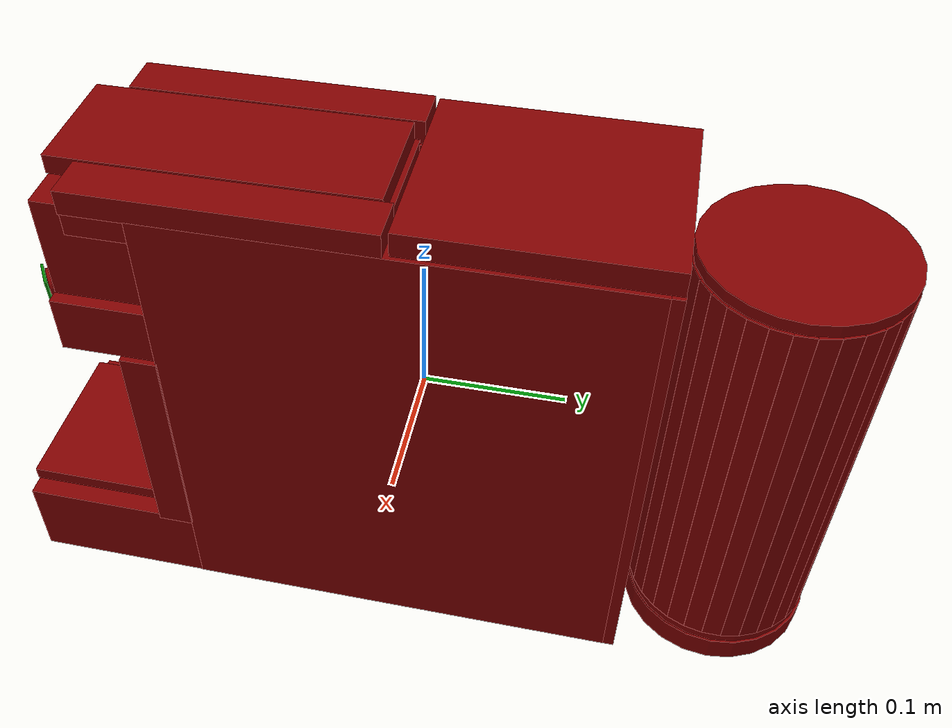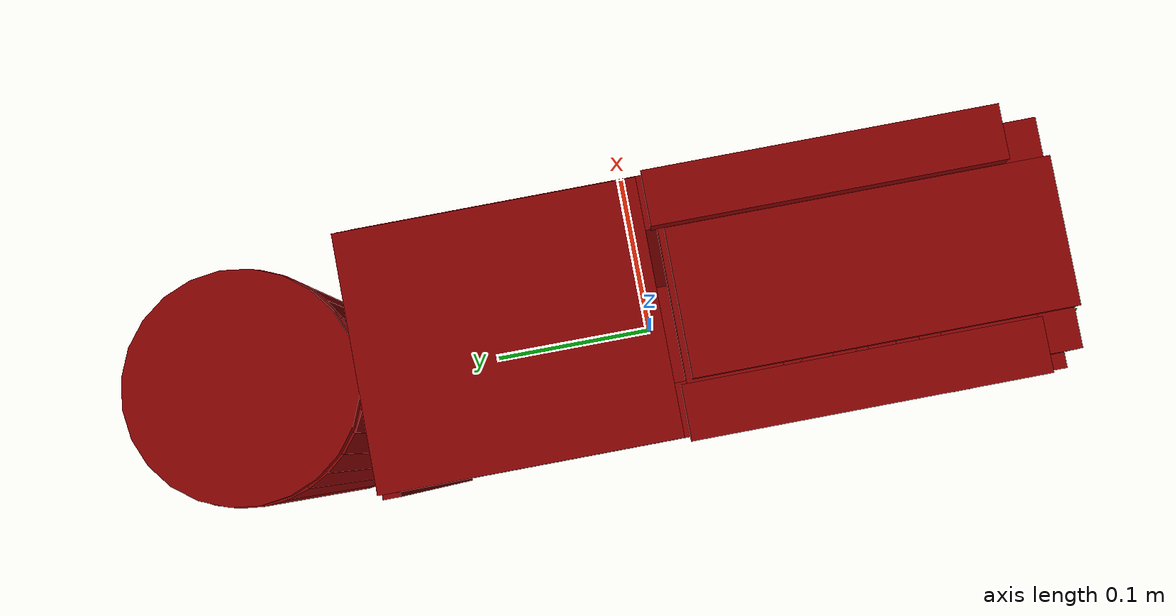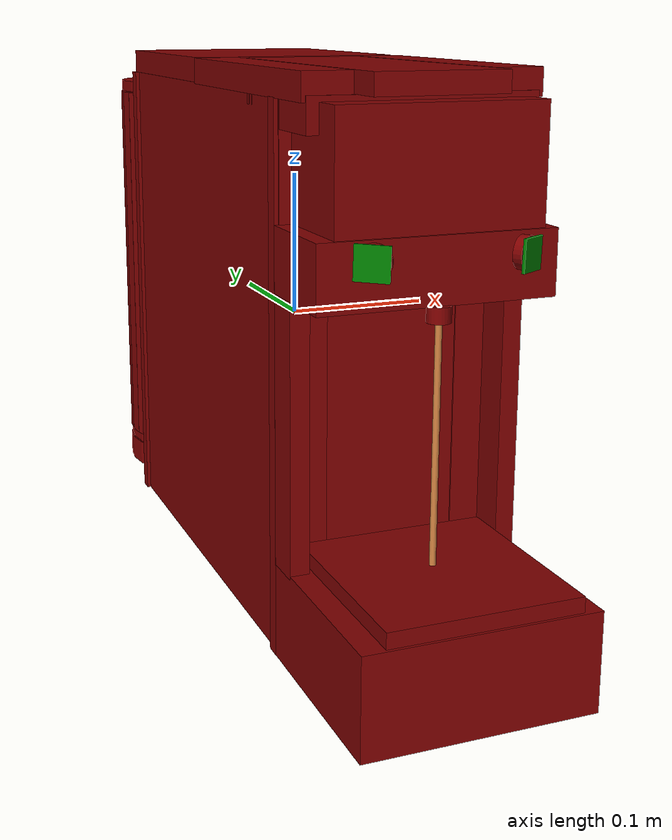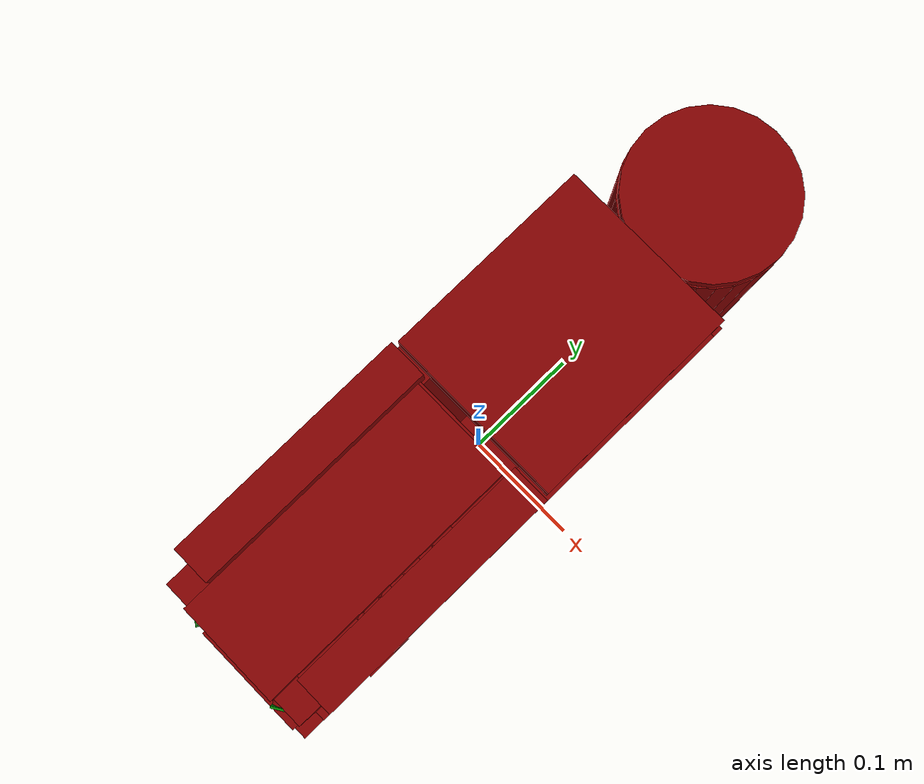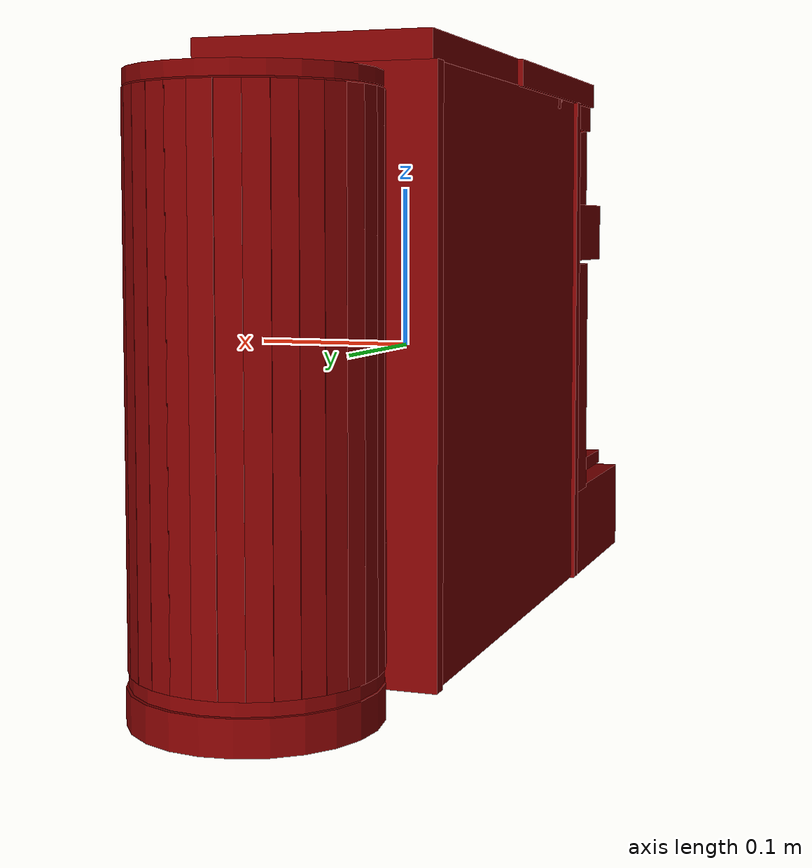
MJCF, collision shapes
<?xml version='1.0' encoding='UTF-8'?>
<mujoco model="model">
  <option timestep="0.002" gravity="0.0 0.0 -9.81"/>
  <compiler angle="radian"/>
  <asset>
    <mesh file="visuals/Body001.obj" name="Body001_vis"/>
    <mesh file="visuals/Button001.obj" name="Button001_vis"/>
    <mesh file="visuals/Button002.obj" name="Button002_vis"/>
    <mesh file="visuals/Container001_Clear.obj" name="Container001_Clear_vis"/>
    <mesh file="visuals/Lid001.obj" name="Lid001_vis"/>
    <mesh file="visuals/Lid002.obj" name="Lid002_vis"/>
    <mesh file="visuals/Lid003.obj" name="Lid003_vis"/>
    <texture file="visuals/T_BC001.png" name="Body001_material" type="2d"/>
    <material name="Body001_material" rgba="1 1 1 1.0" texture="Body001_material" shininess="0.1" specular="5"/>
    <texture file="visuals/T_BC001.png" name="Button001_material" type="2d"/>
    <material name="Button001_material" rgba="1 1 1 1.0" texture="Button001_material" shininess="0.1" specular="5"/>
    <texture file="visuals/T_BC001.png" name="Button002_material" type="2d"/>
    <material name="Button002_material" rgba="1 1 1 1.0" texture="Button002_material" shininess="0.1" specular="5"/>
    <texture file="visuals/T_BC001.png" name="Container001_Clear_material" type="2d"/>
    <material name="Container001_Clear_material" rgba="1 1 1 0.044025152921676636" texture="Container001_Clear_material" shininess="0.5" specular="0.3103448502657381"/>
    <texture file="visuals/T_BC001.png" name="Lid002_material" type="2d"/>
    <material name="Lid002_material" rgba="1 1 1 1.0" texture="Lid002_material" shininess="0.1" specular="5"/>
    <texture file="visuals/T_BC001.png" name="Lid001_material" type="2d"/>
    <material name="Lid001_material" rgba="1 1 1 1.0" texture="Lid001_material" shininess="0.1" specular="5"/>
    <texture file="visuals/T_BC001.png" name="Lid003_material" type="2d"/>
    <material name="Lid003_material" rgba="1 1 1 1.0" texture="Lid003_material" shininess="0.1" specular="5"/>
  </asset>
  <default>
    <default class="visual">
      <geom conaffinity="0" contype="0" group="1" type="mesh"/>
    </default>
    <default class="collision">
      <geom group="0" rgba="0.5 0 0 0.5"/>
    </default>
    <default class="spawn">
      <geom group="0" rgba="1 1 1 0.5" contype="0" conaffinity="0"/>
      <site group="0" rgba="1 1 1 0.5"/>
    </default>
    <default class="region">
      <geom group="1" conaffinity="0" contype="0" rgba="0 1 0 0"/>
    </default>
  </default>
  <worldbody>
    <body>
      <body name="object">
        <geom class="collision" type="box" pos="-0.04937548190355301 -0.24454672634601593 0.08241694420576096" size="0.01025776844471693 0.010257766582071781 0.0004022199136670679" quat="0.6731362342834473 -0.6720357537269592 0.22721721231937408 -0.2088729441165924" name="start_button_1" rgba="0.0 0.5 0 0.5"/>
        <geom class="collision" type="box" pos="0.04686061292886734 -0.24593444168567657 0.0814136192202568" size="0.009793621487915516 0.009793623350560665 0.0008581099682487547" quat="0.6848977208137512 -0.6737108826637268 -0.1888253390789032 0.20340535044670105" name="start_button_2" rgba="0.0 0.5 0 0.5"/>
        <geom mesh="Body001_vis" type="mesh" solimp="0.998 0.998 0.001" solref="0.001 1" friction="0.95 0.3 0.1" class="visual" material="Body001_material"/>
        <geom class="collision" type="box" pos="-0.0010248273611068726 -0.15928101539611816 -0.006899850443005562" size="0.07436585426330566 0.004991411231458187 0.17190204560756683" quat="1.0 0.0 0.0 0.0"/>
        <geom class="collision" type="box" pos="-2.910126931965351e-05 -0.19668233394622803 0.12874363362789154" size="0.06491290777921677 0.03234532102942467 0.03603130206465721" quat="1.0 0.0 0.0 0.0"/>
        <geom class="collision" type="box" pos="-0.0010248273611068726 -0.22982704639434814 -0.14680221676826477" size="0.07436597347259521 0.06548944860696793 0.031718336045742035" quat="1.0 0.0 0.0 0.0"/>
        <geom class="collision" type="cylinder" pos="0.0003619306080508977 0.23045387864112854 -0.16935458779335022" size="0.06715035438537598 0.009803780354559422" quat="1.0 0.0 0.0 0.0"/>
        <geom class="collision" type="box" pos="-0.0010248273611068726 0.0778886154294014 0.17084607481956482" size="0.07143185287714005 0.0833515003323555 0.010654096491634846" quat="1.0 0.0 0.0 0.0"/>
        <geom class="collision" type="box" pos="0.05785723775625229 -0.10756227374076843 0.1729290783405304" size="0.01543299201875925 0.0987086221575737 0.008439315482974052" quat="1.0 0.0 0.0 0.0"/>
        <geom class="collision" type="box" pos="-0.05976239964365959 -0.10756227374076843 0.1729290783405304" size="0.01543300412595272 0.09870867431163788 0.008439322002232075" quat="1.0 0.0 0.0 0.0"/>
        <geom class="collision" type="box" pos="-0.06925616413354874 -0.1771404892206192 -0.03412792831659317" size="0.0061354865320026875 0.012803682126104832 0.08343464881181717" quat="1.0 0.0 0.0 0.0"/>
        <geom class="collision" type="box" pos="0.06879546493291855 -0.1771404892206192 -0.03412792831659317" size="0.006135489791631699 0.012803695164620876 0.08343470096588135" quat="1.0 0.0 0.0 0.0"/>
        <geom class="collision" type="cylinder" pos="-5.519774276763201e-05 -0.22677603363990784 0.047465041279792786" size="0.007336142472922802 0.004886138718575239" quat="1.0 0.0 0.0 0.0"/>
        <geom class="collision" type="box" pos="-0.0010248273611068726 0.15656524896621704 -0.006899850443005562" size="0.07436631619930267 0.004991460591554642 0.17190296947956085" quat="1.0 0.0 0.0 0.0"/>
        <geom class="collision" type="box" pos="-0.057466235011816025 -0.005839457269757986 -0.006899850443005562" size="0.01523696817457676 0.15943863987922668 0.17190377414226532" quat="1.0 0.0 0.0 0.0"/>
        <geom class="collision" type="box" pos="0.05825689062476158 -0.0058394321240484715 -0.006899850443005562" size="0.01523696817457676 0.15943850576877594 0.17190377414226532" quat="1.0 0.0 0.0 0.0"/>
        <geom class="collision" type="box" pos="-0.0010248273611068726 -0.18028058111667633 0.15762312710285187" size="0.07143247872591019 0.026883376762270927 0.010654096491634846" quat="1.0 0.0 0.0 0.0"/>
        <geom class="collision" type="box" pos="-0.0010248273611068726 -0.15068411827087402 0.13206550478935242" size="0.006660216487944126 0.002296114806085825 0.03521032631397247" quat="1.0 0.0 0.0 0.0"/>
        <geom class="collision" type="box" pos="-0.013580141589045525 -0.14849673211574554 0.13206550478935242" size="0.006660216487944126 0.002296114806085825 0.0352105088531971" quat="0.9851607084274292 0.0 -0.0 -0.1716344803571701"/>
        <geom class="collision" type="box" pos="-0.024656018242239952 -0.1421923190355301 0.13206550478935242" size="0.006660216487944126 0.002296114806085825 0.0352105088531971" quat="0.9410831928253174 0.0 -0.0 -0.33817508816719055"/>
        <geom class="collision" type="box" pos="-0.032947346568107605 -0.13251376152038574 0.13206550478935242" size="0.006660216487944126 0.002296114806085825 0.0352105088531971" quat="0.8690757155418396 0.0 -0.0 -0.49467912316322327"/>
        <geom class="collision" type="box" pos="-0.037972062826156616 -0.12069716304540634 0.13206550478935242" size="0.006660216487944126 0.002296114806085825 0.0352105088531971" quat="0.7712752223014832 0.0 -0.0 -0.6365017890930176"/>
        <geom class="collision" type="box" pos="-0.0380435436964035 -0.10780768096446991 0.13206550478935242" size="0.006660216487944126 0.002296114806085825 0.0352105088531971" quat="0.6505842208862305 0.0 -0.0 -0.7594341039657593"/>
        <geom class="collision" type="box" pos="-0.034155555069446564 -0.09549820423126221 0.13206550478935242" size="0.006660216487944126 0.002296114806085825 0.0352105088531971" quat="0.5105851292610168 0.0 -0.0 -0.8598272204399109"/>
        <geom class="collision" type="box" pos="-0.02646409347653389 -0.08494465053081512 0.13206550478935242" size="0.006660216487944126 0.002296114806085825 0.0352105088531971" quat="0.35543233156204224 0.0 -0.0 -0.9347020387649536"/>
        <geom class="collision" type="box" pos="-0.015297607518732548 -0.07800644636154175 0.13206550478935242" size="0.0066602169536054134 0.0022961150389164686 0.0352105088531971" quat="0.18973083794116974 0.0 -0.0 -0.9818361401557922"/>
        <geom class="collision" type="box" pos="-0.0024363184347748756 -0.0752178430557251 0.13206550478935242" size="0.006740183103829622 0.002539593493565917 0.03521035984158516" quat="1.0 0.0 0.0 0.0"/>
        <geom class="collision" type="box" pos="0.010394386947154999 -0.07768405973911285 0.13206550478935242" size="0.006660216487944126 0.002296114806085825 0.0352105088531971" quat="0.15348012745380402 0.0 0.0 0.9881517291069031"/>
        <geom class="collision" type="box" pos="0.022099647670984268 -0.08333708345890045 0.13206550478935242" size="0.006660216487944126 0.002296114806085825 0.0352105088531971" quat="0.3208034336566925 0.0 0.0 0.9471458196640015"/>
        <geom class="collision" type="box" pos="0.03080092929303646 -0.09303832054138184 0.13206550478935242" size="0.006660216487944126 0.002296114806085825 0.0352105088531971" quat="0.4786059260368347 0.0 0.0 0.8780298233032227"/>
        <geom class="collision" type="box" pos="0.03550374507904053 -0.10509361326694489 0.13206550478935242" size="0.006660216487944126 0.002296114806085825 0.0352105088531971" quat="0.622204065322876 0.0 0.0 0.7828550934791565"/>
        <geom class="collision" type="box" pos="0.03584675490856171 -0.11790208518505096 0.13206550478935242" size="0.006660216487944126 0.002296114806085825 0.0352105088531971" quat="0.7473360300064087 0.0 0.0 0.6644462943077087"/>
        <geom class="collision" type="box" pos="0.032205142080783844 -0.13011518120765686 0.13206550478935242" size="0.006660216487944126 0.002296114806085825 0.0352105088531971" quat="0.8502880334854126 0.0 0.0 0.5263177156448364"/>
        <geom class="collision" type="box" pos="0.024647915735840797 -0.1403772085905075 0.13206550478935242" size="0.006660216487944126 0.002296114806085825 0.0352105088531971" quat="0.9280046820640564 0.0 0.0 0.3725685477256775"/>
        <geom class="collision" type="box" pos="0.01406557485461235 -0.14747895300388336 0.13206550478935242" size="0.006660216487944126 0.002296114806085825 0.0352105088531971" quat="0.978179395198822 0.0 0.0 0.20776212215423584"/>
        <geom class="collision" type="box" pos="0.0017050743335857987 -0.15058360993862152 0.13206550478935242" size="0.006660216487944126 0.002296114806085825 0.0352105088531971" quat="0.9993230104446411 0.0 0.0 0.036789607256650925"/>
        <geom class="collision" type="cylinder" pos="0.00018449734488967806 -0.11330080032348633 0.09491579979658127" size="0.035588137805461884 0.0061948043294250965" quat="1.0 0.0 0.0 0.0"/>
        <geom class="collision" type="box" pos="0.036997586488723755 -0.15385611355304718 0.1627226620912552" size="0.00759233720600605 0.01606653816998005 0.00491512892767787" quat="0.9312794804573059 0.0 0.0 0.3643054664134979"/>
        <geom class="collision" type="box" pos="0.04617907106876373 -0.14277337491512299 0.1627226620912552" size="0.00759233720600605 0.0160665363073349 0.00491512892767787" quat="0.8764225840568542 0.0 0.0 0.48154282569885254"/>
        <geom class="collision" type="box" pos="0.05221516266465187 -0.1297084391117096 0.1627226620912552" size="0.00759233720600605 0.0160665363073349 0.00491512892767787" quat="0.8068820834159851 0.0 0.0 0.5907125473022461"/>
        <geom class="collision" type="box" pos="0.05470304191112518 -0.11553319543600082 0.1627226620912552" size="0.00759233720600605 0.01606653444468975 0.00491512892767787" quat="0.7238231301307678 0.0 0.0 0.6899855732917786"/>
        <geom class="collision" type="box" pos="0.05347668007016182 -0.1011936366558075 0.1627226620912552" size="0.00759233720600605 0.01606653444468975 0.00491512892767787" quat="0.6286373138427734 0.0 0.0 0.7776986360549927"/>
        <geom class="collision" type="box" pos="0.04861791804432869 -0.08764670789241791 0.1627226620912552" size="0.00759233720600605 0.0160665363073349 0.00491512892767787" quat="0.5229194760322571 0.0 0.0 0.8523821234703064"/>
        <geom class="collision" type="box" pos="0.04045099765062332 -0.0757964551448822 0.1627226620912552" size="0.00759233720600605 0.0160665363073349 0.00491512892767787" quat="0.40844056010246277 0.0 0.0 0.9127849340438843"/>
        <geom class="collision" type="box" pos="0.029520945623517036 -0.06643372029066086 0.1627226620912552" size="0.00759233720600605 0.0160665363073349 0.00491512892767787" quat="0.28711870312690735 0.0 0.0 0.957895040512085"/>
        <geom class="collision" type="box" pos="0.016557173803448677 -0.06018330901861191 0.1627226620912552" size="0.00759233720600605 0.0160665363073349 0.00491512892767787" quat="0.16098646819591522 0.0 0.0 0.9869565963745117"/>
        <geom class="collision" type="box" pos="0.002424819627776742 -0.05746234953403473 0.1627226620912552" size="0.00759233720600605 0.01606653444468975 0.00491512892767787" quat="0.03215707838535309 0.0 0.0 0.9994828104972839"/>
        <geom class="collision" type="box" pos="-0.011932997032999992 -0.05845242366194725 0.1627226620912552" size="0.00759233720600605 0.0160665363073349 0.00491512892767787" quat="0.09721110016107559 0.0 -0.0 -0.9952638149261475"/>
        <geom class="collision" type="box" pos="-0.02555811032652855 -0.06308747828006744 0.1627226620912552" size="0.00759233720600605 0.01606653444468975 0.00491512892767787" quat="0.22495068609714508 0.0 -0.0 -0.9743701219558716"/>
        <geom class="collision" type="box" pos="-0.037541233003139496 -0.07105816155672073 0.1627226620912552" size="0.00759233720600605 0.0160665363073349 0.00491512892767787" quat="0.34892135858535767 0.0 -0.0 -0.9371520280838013"/>
        <geom class="collision" type="box" pos="-0.047082673758268356 -0.08183256536722183 0.1627226620912552" size="0.00759233720600605 0.0160665363073349 0.00491512892767787" quat="0.46704623103141785 0.0 -0.0 -0.8842328786849976"/>
        <geom class="collision" type="box" pos="-0.05354570224881172 -0.0946916714310646 0.1627226620912552" size="0.00759233720600605 0.0160665363073349 0.00491512892767787" quat="0.5773463249206543 0.0 -0.0 -0.8164993524551392"/>
        <geom class="collision" type="box" pos="-0.056498996913433075 -0.10877731442451477 0.1627226620912552" size="0.00759233720600605 0.01606653444468975 0.00491512892767787" quat="0.6779735684394836 0.0 -0.0 -0.7350862622261047"/>
        <geom class="collision" type="box" pos="-0.05574546009302139 -0.12314949929714203 0.1627226620912552" size="0.00759233720600605 0.01606653816998005 0.00491512892767787" quat="0.7672421336174011 0.0 -0.0 -0.6413575410842896"/>
        <geom class="collision" type="box" pos="-0.05133537948131561 -0.13684909045696259 0.1627226620912552" size="0.00759233720600605 0.0160665363073349 0.00491512892767787" quat="0.8436563611030579 0.0 -0.0 -0.536883533000946"/>
        <geom class="collision" type="box" pos="-0.043563079088926315 -0.14896182715892792 0.1627226620912552" size="0.00759233720600605 0.0160665363073349 0.00491512892767787" quat="0.9059359431266785 0.0 -0.0 -0.4234147071838379"/>
        <geom class="collision" type="box" pos="-0.03294721618294716 -0.15867939591407776 0.1627226620912552" size="0.00759233720600605 0.0160665363073349 0.00491512892767787" quat="0.9530376195907593 0.0 -0.0 -0.3028518557548523"/>
        <geom class="collision" type="box" pos="-0.020196273922920227 -0.16535326838493347 0.1627226620912552" size="0.00759233720600605 0.0160665363073349 0.00491512892767787" quat="0.9841721057891846 0.0 -0.0 -0.17721523344516754"/>
        <geom class="collision" type="box" pos="-0.006161155179142952 -0.16853807866573334 0.1627226620912552" size="0.00759233720600605 0.01606653816998005 0.00491512892767787" quat="0.9988178610801697 0.0 -0.0 -0.04860943928360939"/>
        <geom class="collision" type="box" pos="0.008221498690545559 -0.1680212765932083 0.1627226620912552" size="0.00759233720600605 0.0160665363073349 0.00491512892767787" quat="0.9967294335365295 0.0 0.0 0.08081110566854477"/>
        <geom class="collision" type="box" pos="0.021991832181811333 -0.16383735835552216 0.1627226620912552" size="0.00759233720600605 0.0160665363073349 0.00491512892767787" quat="0.9779418706893921 0.0 0.0 0.20887719094753265"/>
        <geom class="collision" type="box" pos="0.034230899065732956 -0.156265527009964 0.16274797916412354" size="0.00759233720600605 0.0160665363073349 0.00491512892767787" quat="0.9427699446678162 0.0 0.0 0.33344393968582153"/>
        <geom class="collision" type="box" pos="-0.0010248273611068726 -0.039271771907806396 0.15703599154949188" size="0.07143247872591019 0.026883376762270927 0.010654096491634846" quat="1.0 0.0 0.0 0.0"/>
        <geom class="collision" type="box" pos="-0.0010248273611068726 -0.19689832627773285 0.07222961634397507" size="0.0743662491440773 0.032561495900154114 0.0201568566262722" quat="1.0 0.0 0.0 0.0"/>
        <geom class="collision" type="box" pos="-0.0010248273611068726 -0.0013596564531326294 -0.16921637952327728" size="0.042764000594615936 0.15361203253269196 0.010654101148247719" quat="1.0 0.0 0.0 0.0"/>
        <body name="Button001">
          <joint axis="0.5751256942749023 0.8180650472640991 0.0" pos="-0.04694417119026184 -0.24104921519756317 0.0821162685751915" limited="true" name="Button001_joint" range="0.0 0.004" type="slide" damping="1" frictionloss="1" armature=".01" stiffness="0.05"/>
          <geom mesh="Button001_vis" type="mesh" solimp="0.998 0.998 0.001" solref="0.001 1" friction="0.95 0.3 0.1" class="visual" material="Button001_material"/>
          <geom class="collision" type="cylinder" pos="-0.04702256619930267 -0.2411590814590454 0.082392118871212" size="0.010165580548346043 0.0032252126839011908" quat="0.6737717986106873 -0.6726199388504028 0.225325345993042 -0.20698419213294983"/>
        </body>
        <body name="Button002">
          <joint axis="-0.5393428206443787 0.8420863151550293 0.0" pos="0.044853709638118744 -0.2427954077720642 0.0818866714835167" limited="true" name="Button002_joint" range="0.0 0.004" type="slide" damping="1" frictionloss="1" armature=".01" stiffness="0.05"/>
          <geom mesh="Button002_vis" type="mesh" solimp="0.998 0.998 0.001" solref="0.001 1" friction="0.95 0.3 0.1" class="visual" material="Button002_material"/>
          <geom class="collision" type="cylinder" pos="0.04456620290875435 -0.24234755337238312 0.0820106714963913" size="0.009963491931557655 0.0027807080186903477" quat="0.6849961876869202 -0.6738170981407166 -0.1884676218032837 0.20305348932743073"/>
        </body>
        <body name="Container001_Clear">
          <geom mesh="Container001_Clear_vis" type="mesh" solimp="0.998 0.998 0.001" solref="0.001 1" friction="0.95 0.3 0.1" class="visual" material="Container001_Clear_material"/>
          <geom class="collision" type="box" pos="-0.0022487612441182137 0.2931978702545166 -0.003206297755241394" size="0.006768156308680773 0.00329942861571908 0.1485159546136856" quat="1.0 0.0 0.0 0.0"/>
          <geom class="collision" type="box" pos="0.010448170825839043 0.2923707067966461 -0.003206297755241394" size="0.006660216487944126 0.0030564535409212112 0.1485159546136856" quat="0.08204901963472366 0.0 0.0 0.9966282844543457"/>
          <geom class="collision" type="box" pos="0.02227116748690605 0.2891962230205536 -0.003206297755241394" size="0.006660215090960264 0.0030564535409212112 0.1485159546136856" quat="0.17790848016738892 0.0 0.0 0.9840470552444458"/>
          <geom class="collision" type="box" pos="0.03377627953886986 0.28348857164382935 -0.003206297755241394" size="0.006660216487944126 0.0030564535409212112 0.1485159546136856" quat="0.27668896317481995 0.0 0.0 0.9609595537185669"/>
          <geom class="collision" type="box" pos="0.043894652277231216 0.2755788564682007 -0.003206297755241394" size="0.006660216487944126 0.0030564535409212112 0.1485159546136856" quat="0.37262213230133057 0.0 0.0 0.9279831647872925"/>
          <geom class="collision" type="box" pos="0.05221087485551834 0.2657918632030487 -0.003206297755241394" size="0.006660216487944126 0.0030564535409212112 0.1485159546136856" quat="0.46472078561782837 0.0 0.0 0.8854572772979736"/>
          <geom class="collision" type="box" pos="0.05838349089026451 0.25452935695648193 -0.003206297755241394" size="0.0066602169536054134 0.003056454239413142 0.1485159546136856" quat="0.5520371794700623 0.0 0.0 0.8338195085525513"/>
          <geom class="collision" type="box" pos="0.062159065157175064 0.24225378036499023 -0.003206297755241394" size="0.0066602169536054134 0.003056453075259924 0.1485159546136856" quat="0.6336727142333984 0.0 0.0 0.773601233959198"/>
          <geom class="collision" type="box" pos="0.06338263303041458 0.22946910560131073 -0.003206297755241394" size="0.0030881173443049192 0.006674702744930983 0.1485159546136856" quat="1.0 0.0 0.0 0.0"/>
          <geom class="collision" type="box" pos="0.06200389564037323 0.2167002409696579 -0.003206297755241394" size="0.006660216487944126 0.003056453075259924 0.1485159546136856" quat="0.7766082882881165 0.0 0.0 0.6299837827682495"/>
          <geom class="collision" type="box" pos="0.058079514652490616 0.2044714093208313 -0.003206297755241394" size="0.006660216487944126 0.0030564535409212112 0.1485159546136856" quat="0.8364374041557312 0.0 0.0 0.5480625033378601"/>
          <geom class="collision" type="box" pos="0.051770586520433426 0.19328470528125763 -0.003206297755241394" size="0.006660216487944126 0.0030564535409212112 0.1485159546136856" quat="0.8876590132713318 0.0 0.0 0.4605013132095337"/>
          <geom class="collision" type="box" pos="0.04333612695336342 0.18359941244125366 -0.003206297755241394" size="0.006660216487944126 0.003056453773751855 0.1485159546136856" quat="0.9297460913658142 0.0 0.0 0.3682013154029846"/>
          <geom class="collision" type="box" pos="0.03312244266271591 0.17581316828727722 -0.003206297755241394" size="0.006660216487944126 0.003056453773751855 0.1485159546136856" quat="0.9622654914855957 0.0 0.0 0.27211225032806396"/>
          <geom class="collision" type="box" pos="0.021548863500356674 0.17024566233158112 -0.003206297755241394" size="0.006660216487944126 0.0030564535409212112 0.1485159546136856" quat="0.9848825931549072 0.0 0.0 0.17322315275669098"/>
          <geom class="collision" type="box" pos="0.009090560488402843 0.16712546348571777 -0.003206297755241394" size="0.006660216487944126 0.0030564535409212112 0.1485159546136856" quat="0.9973646998405457 0.0 0.0 0.07255125790834427"/>
          <geom class="collision" type="box" pos="-0.0037409686483442783 0.1665806770324707 -0.003206297755241394" size="0.006660216487944126 0.0030564535409212112 0.1485159546136856" quat="0.9995832443237305 0.0 -0.0 -0.02886713668704033"/>
          <geom class="collision" type="box" pos="-0.016418907791376114 0.16863368451595306 -0.003206297755241394" size="0.006660216487944126 0.003056453773751855 0.1485159546136856" quat="0.9915155172348022 0.0 -0.0 -0.12998847663402557"/>
          <geom class="collision" type="box" pos="-0.02842274121940136 0.17320017516613007 -0.003206297755241394" size="0.006660216487944126 0.003056453773751855 0.1485159546136856" quat="0.9732444286346436 0.0 -0.0 -0.22977221012115479"/>
          <geom class="collision" type="box" pos="-0.03925963491201401 0.1800926923751831 -0.003206297755241394" size="0.006660216487944126 0.0030564535409212112 0.1485159546136856" quat="0.9449580907821655 0.0 -0.0 -0.32719138264656067"/>
          <geom class="collision" type="box" pos="-0.04848466441035271 0.18902823328971863 -0.003206297755241394" size="0.006660216487944126 0.0030564535409212112 0.1485159546136856" quat="0.9069475531578064 0.0 -0.0 -0.4212435185909271"/>
          <geom class="collision" type="box" pos="-0.055719081312417984 0.1996399313211441 -0.003206297755241394" size="0.006660216487944126 0.0030564535409212112 0.1485159546136856" quat="0.859604001045227 0.0 -0.0 -0.5109608173370361"/>
          <geom class="collision" type="box" pos="-0.060665860772132874 0.21149210631847382 -0.003206297755241394" size="0.006660216487944126 0.0030564535409212112 0.1485159546136856" quat="0.803414523601532 0.0 -0.0 -0.5954200625419617"/>
          <geom class="collision" type="box" pos="-0.06312191486358643 0.22409817576408386 -0.003206297755241394" size="0.006660216487944126 0.0030564535409212112 0.1485159546136856" quat="0.7389574646949768 0.0 -0.0 -0.6737520694732666"/>
          <geom class="collision" type="box" pos="-0.06298640370368958 0.23694054782390594 -0.003206297755241394" size="0.006660216487944126 0.0030564535409212112 0.1485159546136856" quat="0.6668961048126221 0.0 -0.0 -0.7451506853103638"/>
          <geom class="collision" type="box" pos="-0.06026487424969673 0.24949194490909576 -0.003206297755241394" size="0.006660216487944126 0.0030564533080905676 0.1485159546136856" quat="0.5879721641540527 0.0 -0.0 -0.8088811635971069"/>
          <geom class="collision" type="box" pos="-0.055069100111722946 0.26123711466789246 -0.003206297755241394" size="0.006660216487944126 0.003056453773751855 0.1485159546136856" quat="0.5029973983764648 0.0 -0.0 -0.8642879128456116"/>
          <geom class="collision" type="box" pos="-0.04761236160993576 0.27169376611709595 -0.003206297755241394" size="0.00666021415963769 0.0030564535409212112 0.1485159546136856" quat="0.41284650564193726 0.0 -0.0 -0.9108006358146667"/>
          <geom class="collision" type="box" pos="-0.03820083290338516 0.28043267130851746 -0.003206297755241394" size="0.006660216487944126 0.0030564535409212112 0.1485159546136856" quat="0.31844717264175415 0.0 -0.0 -0.9479405879974365"/>
          <geom class="collision" type="box" pos="-0.02722090855240822 0.28709495067596436 -0.003206297755241394" size="0.006660216487944126 0.0030564535409212112 0.1485159546136856" quat="0.22077080607414246 0.0 -0.0 -0.9753257036209106"/>
          <geom class="collision" type="box" pos="-0.015123384073376656 0.29140710830688477 -0.003206297755241394" size="0.006660216487944126 0.0030564535409212112 0.1485159546136856" quat="0.12082259356975555 0.0 -0.0 -0.9926741123199463"/>
          <geom class="collision" type="cylinder" pos="0.00018449734488967806 0.23001950979232788 -0.15510645508766174" size="0.06608204543590546 0.004083031322807074" quat="1.0 0.0 0.0 0.0"/>
          <body name="Lid002">
            <geom mesh="Lid002_vis" type="mesh" solimp="0.998 0.998 0.001" solref="0.001 1" friction="0.95 0.3 0.1" class="visual" material="Lid002_material"/>
            <geom class="collision" type="cylinder" pos="0.00018449734488967806 0.23001950979232788 0.15044458210468292" size="0.06608204543590546 0.004117049742490053" quat="1.0 0.0 0.0 0.0"/>
          </body>
        </body>
        <body name="Lid001">
          <geom mesh="Lid001_vis" type="mesh" solimp="0.998 0.998 0.001" solref="0.001 1" friction="0.95 0.3 0.1" class="visual" material="Lid001_material"/>
          <geom class="collision" type="box" pos="-0.000596148194745183 -0.23302236199378967 -0.10878430306911469" size="0.06082738935947418 0.06268739700317383 0.004938466940075159" quat="1.0 0.0 0.0 0.0"/>
        </body>
        <body name="Lid003">
          <joint axis="-1.0 0.0 0.0" pos="0.0 -0.014238815754652023 0.17820614576339722" limited="true" name="Lid003_joint" range="0.0 1.5707963267948966" type="hinge" damping="1" frictionloss="1" armature=".01" stiffness="0.05"/>
          <geom mesh="Lid003_vis" type="mesh" solimp="0.998 0.998 0.001" solref="0.001 1" friction="0.95 0.3 0.1" class="visual" material="Lid003_material"/>
          <geom class="collision" type="box" pos="-0.0009624044178053737 -0.1218167096376419 0.1747584044933319" size="0.04131826013326645 0.10612587630748749 0.006610069423913956" quat="1.0 0.0 0.0 0.0"/>
        </body>
        <site type="cylinder" rgba="0.8 0.5 0.25 1" size="0.0020547579042613506 0.10563929378986359" pos="0.0 -0.2268146127462387 -0.058287229388952255" name="coffee_liquid"/>
        <site rgba="0 0 0 0" size="0.010079912841320038 0.010079912841320038" pos="0.01 -0.25705478966236115 -0.10921411216259003" name="receptacle_place_site"/>
        <geom class="region" name="reg_main" type="box" pos="0.0 0.0 0.0" size="0.07369084453582764 0.29623399472236633 0.17928652262687683"/>
      </body>
    </body>
  </worldbody>
  <actuator>
    <motor name="Button001_joint_actuator" joint="Button001_joint" gear="0.5"/>
    <motor name="Button002_joint_actuator" joint="Button002_joint" gear="0.5"/>
    <motor name="Lid003_joint_actuator" joint="Lid003_joint" gear="10"/>
  </actuator>
</mujoco>
